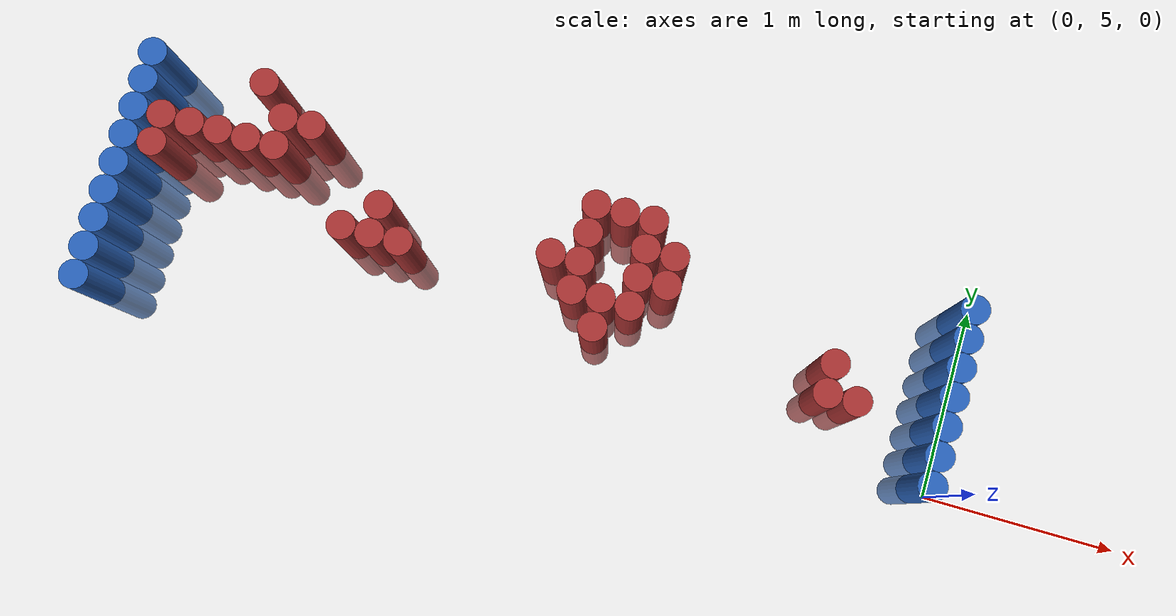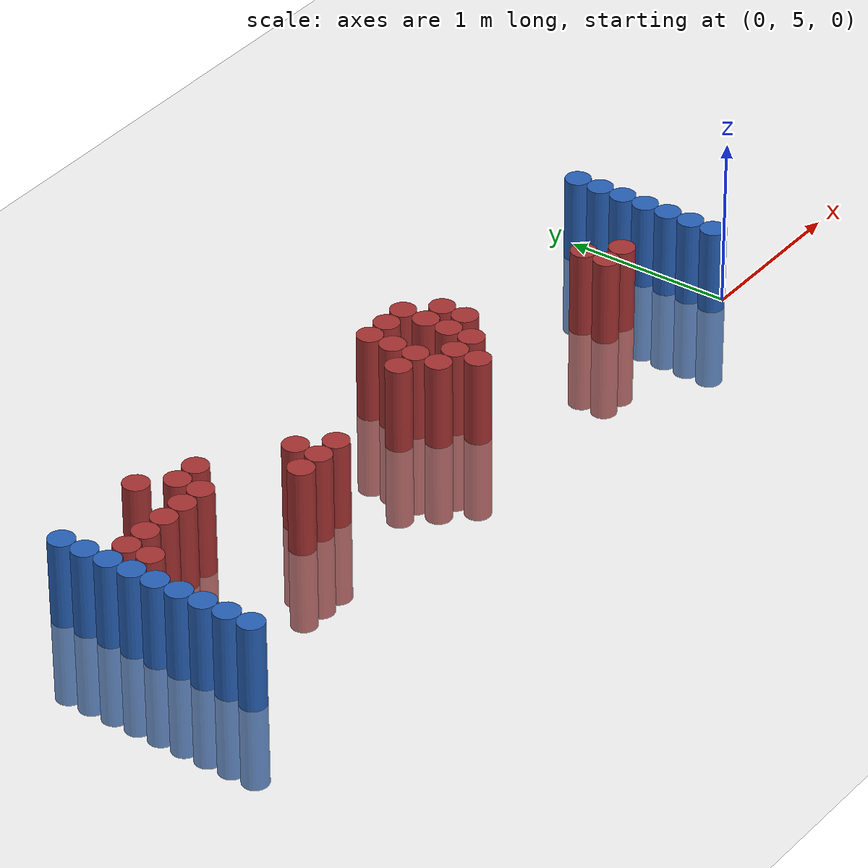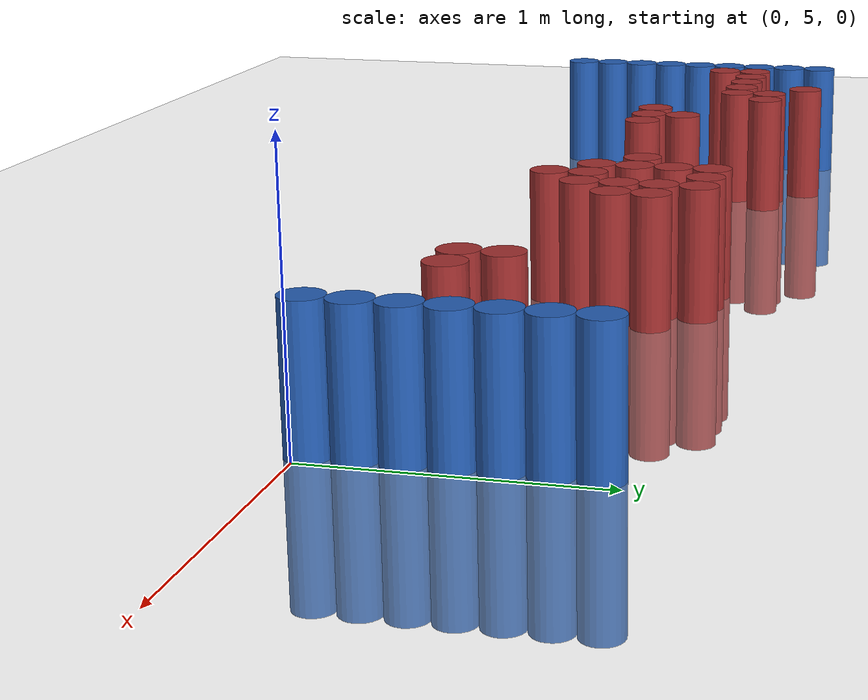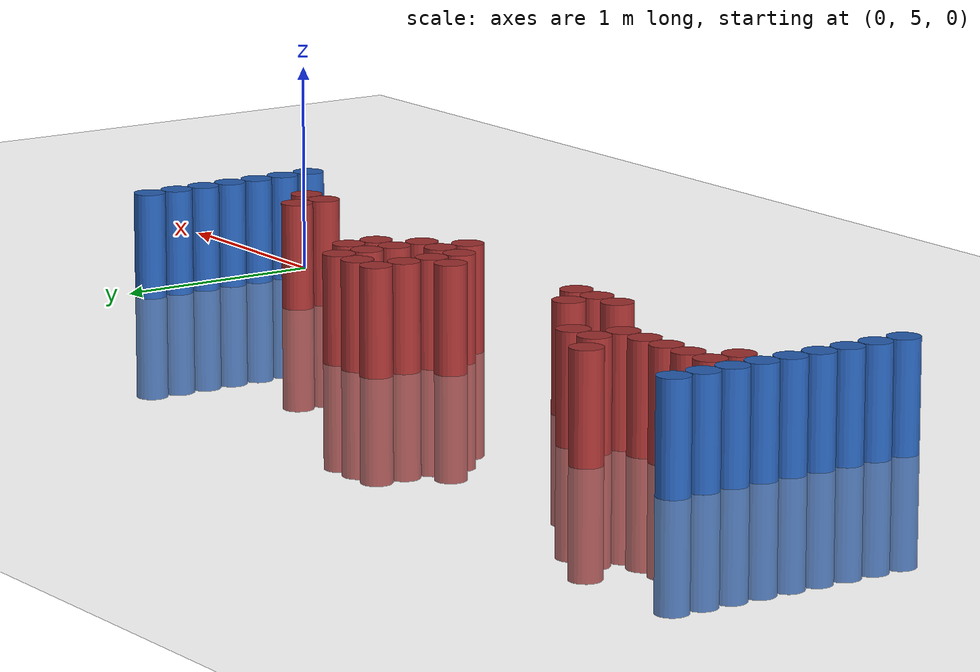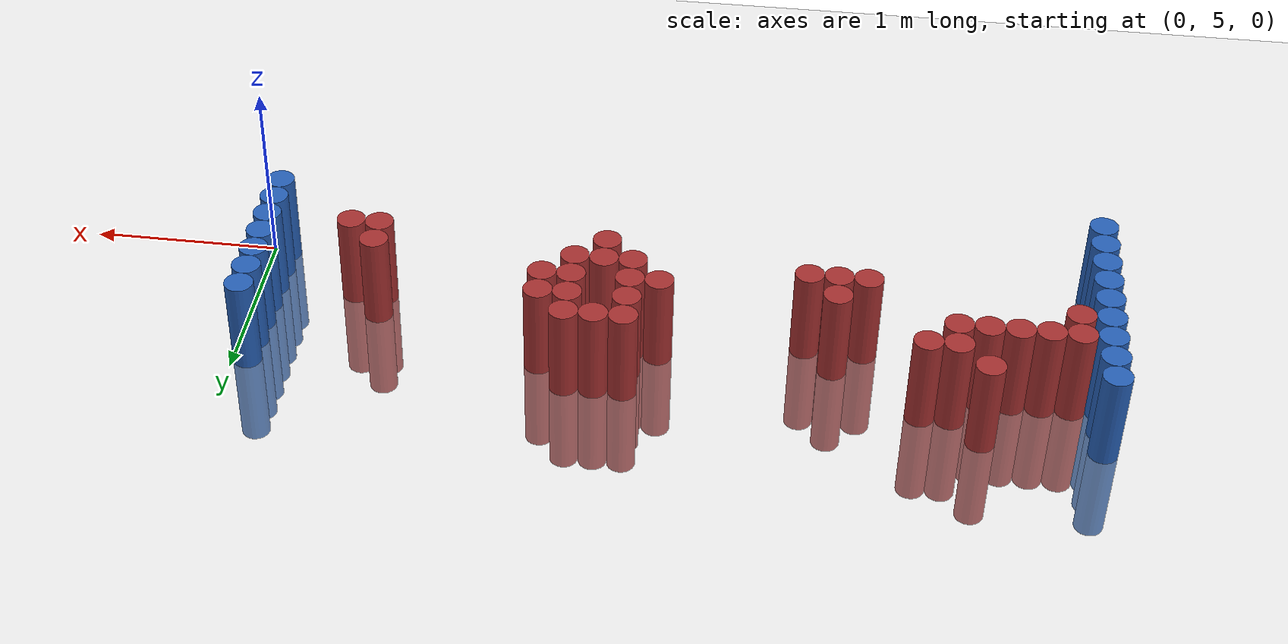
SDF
<sdf version="1.6">
 <world name="default">
  <model name="ground_plane">
   <static>1</static>
   <link name="link">
    <collision name="collision">
     <geometry><plane><normal>0 0 1</normal><size>100 100</size></plane></geometry>
     <surface><friction><ode><mu>100</mu><mu2>50</mu2></ode></friction></surface>
    </collision>
    <visual name="visual">
     <cast_shadows>0</cast_shadows>
     <geometry><plane><normal>0 0 1</normal><size>100 100</size></plane></geometry>
     <material>
      <script><uri>file://media/materials/scripts/gazebo.material</uri><name>Gazebo/Grey</name></script>
     </material>
    </visual>
   </link>
  </model>
  <model name="unit_cylinder_93">
   <static>1</static>
   <pose>-4.425000 4.875000 0.000000 0.000000 0.000000 0.000000</pose>
   <link name="link">
    <inertial>
     <mass>1</mass>
     <inertia><ixx>0.145833</ixx><ixy>0</ixy><ixz>0</ixz><iyy>0.145833</iyy><iyz>0</iyz><izz>0.125</izz></inertia>
    </inertial>
    <collision name="collision">
     <geometry><cylinder><radius>0.075000</radius><length>1</length></cylinder></geometry>
    </collision>
    <visual name="visual">
     <geometry><cylinder><radius>0.075000</radius><length>1</length></cylinder></geometry>
     <material>
      <ambient>0.152000 0.379000 0.720000 1</ambient>
      <diffuse>0.152000 0.379000 0.720000 1</diffuse>
     </material>
     <material>
      <script><name>Gazebo/Grey</name><uri>file://media/materials/scripts/gazebo.material</uri></script>
     </material>
    </visual>
   </link>
  </model>
  <model name="unit_cylinder_94">
   <static>1</static>
   <pose>-0.075000 5.025000 0.000000 0.000000 0.000000 0.000000</pose>
   <link name="link">
    <inertial>
     <mass>1</mass>
     <inertia><ixx>0.145833</ixx><ixy>0</ixy><ixz>0</ixz><iyy>0.145833</iyy><iyz>0</iyz><izz>0.125</izz></inertia>
    </inertial>
    <collision name="collision">
     <geometry><cylinder><radius>0.075000</radius><length>1</length></cylinder></geometry>
    </collision>
    <visual name="visual">
     <geometry><cylinder><radius>0.075000</radius><length>1</length></cylinder></geometry>
     <material>
      <ambient>0.152000 0.379000 0.720000 1</ambient>
      <diffuse>0.152000 0.379000 0.720000 1</diffuse>
     </material>
     <material>
      <script><name>Gazebo/Grey</name><uri>file://media/materials/scripts/gazebo.material</uri></script>
     </material>
    </visual>
   </link>
  </model>
  <model name="unit_cylinder_95">
   <static>1</static>
   <pose>-4.425000 5.025000 0.000000 0.000000 0.000000 0.000000</pose>
   <link name="link">
    <inertial>
     <mass>1</mass>
     <inertia><ixx>0.145833</ixx><ixy>0</ixy><ixz>0</ixz><iyy>0.145833</iyy><iyz>0</iyz><izz>0.125</izz></inertia>
    </inertial>
    <collision name="collision">
     <geometry><cylinder><radius>0.075000</radius><length>1</length></cylinder></geometry>
    </collision>
    <visual name="visual">
     <geometry><cylinder><radius>0.075000</radius><length>1</length></cylinder></geometry>
     <material>
      <ambient>0.152000 0.379000 0.720000 1</ambient>
      <diffuse>0.152000 0.379000 0.720000 1</diffuse>
     </material>
     <material>
      <script><name>Gazebo/Grey</name><uri>file://media/materials/scripts/gazebo.material</uri></script>
     </material>
    </visual>
   </link>
  </model>
  <model name="unit_cylinder_96">
   <static>1</static>
   <pose>-4.425000 5.175000 0.000000 0.000000 0.000000 0.000000</pose>
   <link name="link">
    <inertial>
     <mass>1</mass>
     <inertia><ixx>0.145833</ixx><ixy>0</ixy><ixz>0</ixz><iyy>0.145833</iyy><iyz>0</iyz><izz>0.125</izz></inertia>
    </inertial>
    <collision name="collision">
     <geometry><cylinder><radius>0.075000</radius><length>1</length></cylinder></geometry>
    </collision>
    <visual name="visual">
     <geometry><cylinder><radius>0.075000</radius><length>1</length></cylinder></geometry>
     <material>
      <ambient>0.152000 0.379000 0.720000 1</ambient>
      <diffuse>0.152000 0.379000 0.720000 1</diffuse>
     </material>
     <material>
      <script><name>Gazebo/Grey</name><uri>file://media/materials/scripts/gazebo.material</uri></script>
     </material>
    </visual>
   </link>
  </model>
  <model name="unit_cylinder_97">
   <static>1</static>
   <pose>-4.425000 5.325000 0.000000 0.000000 0.000000 0.000000</pose>
   <link name="link">
    <inertial>
     <mass>1</mass>
     <inertia><ixx>0.145833</ixx><ixy>0</ixy><ixz>0</ixz><iyy>0.145833</iyy><iyz>0</iyz><izz>0.125</izz></inertia>
    </inertial>
    <collision name="collision">
     <geometry><cylinder><radius>0.075000</radius><length>1</length></cylinder></geometry>
    </collision>
    <visual name="visual">
     <geometry><cylinder><radius>0.075000</radius><length>1</length></cylinder></geometry>
     <material>
      <ambient>0.152000 0.379000 0.720000 1</ambient>
      <diffuse>0.152000 0.379000 0.720000 1</diffuse>
     </material>
     <material>
      <script><name>Gazebo/Grey</name><uri>file://media/materials/scripts/gazebo.material</uri></script>
     </material>
    </visual>
   </link>
  </model>
  <model name="unit_cylinder_98">
   <static>1</static>
   <pose>-4.425000 5.475000 0.000000 0.000000 0.000000 0.000000</pose>
   <link name="link">
    <inertial>
     <mass>1</mass>
     <inertia><ixx>0.145833</ixx><ixy>0</ixy><ixz>0</ixz><iyy>0.145833</iyy><iyz>0</iyz><izz>0.125</izz></inertia>
    </inertial>
    <collision name="collision">
     <geometry><cylinder><radius>0.075000</radius><length>1</length></cylinder></geometry>
    </collision>
    <visual name="visual">
     <geometry><cylinder><radius>0.075000</radius><length>1</length></cylinder></geometry>
     <material>
      <ambient>0.152000 0.379000 0.720000 1</ambient>
      <diffuse>0.152000 0.379000 0.720000 1</diffuse>
     </material>
     <material>
      <script><name>Gazebo/Grey</name><uri>file://media/materials/scripts/gazebo.material</uri></script>
     </material>
    </visual>
   </link>
  </model>
  <model name="unit_cylinder_99">
   <static>1</static>
   <pose>-4.425000 5.625000 0.000000 0.000000 0.000000 0.000000</pose>
   <link name="link">
    <inertial>
     <mass>1</mass>
     <inertia><ixx>0.145833</ixx><ixy>0</ixy><ixz>0</ixz><iyy>0.145833</iyy><iyz>0</iyz><izz>0.125</izz></inertia>
    </inertial>
    <collision name="collision">
     <geometry><cylinder><radius>0.075000</radius><length>1</length></cylinder></geometry>
    </collision>
    <visual name="visual">
     <geometry><cylinder><radius>0.075000</radius><length>1</length></cylinder></geometry>
     <material>
      <ambient>0.152000 0.379000 0.720000 1</ambient>
      <diffuse>0.152000 0.379000 0.720000 1</diffuse>
     </material>
     <material>
      <script><name>Gazebo/Grey</name><uri>file://media/materials/scripts/gazebo.material</uri></script>
     </material>
    </visual>
   </link>
  </model>
  <model name="unit_cylinder_100">
   <static>1</static>
   <pose>-4.425000 5.775000 0.000000 0.000000 0.000000 0.000000</pose>
   <link name="link">
    <inertial>
     <mass>1</mass>
     <inertia><ixx>0.145833</ixx><ixy>0</ixy><ixz>0</ixz><iyy>0.145833</iyy><iyz>0</iyz><izz>0.125</izz></inertia>
    </inertial>
    <collision name="collision">
     <geometry><cylinder><radius>0.075000</radius><length>1</length></cylinder></geometry>
    </collision>
    <visual name="visual">
     <geometry><cylinder><radius>0.075000</radius><length>1</length></cylinder></geometry>
     <material>
      <ambient>0.152000 0.379000 0.720000 1</ambient>
      <diffuse>0.152000 0.379000 0.720000 1</diffuse>
     </material>
     <material>
      <script><name>Gazebo/Grey</name><uri>file://media/materials/scripts/gazebo.material</uri></script>
     </material>
    </visual>
   </link>
  </model>
  <model name="unit_cylinder_101">
   <static>1</static>
   <pose>-4.425000 5.925000 0.000000 0.000000 0.000000 0.000000</pose>
   <link name="link">
    <inertial>
     <mass>1</mass>
     <inertia><ixx>0.145833</ixx><ixy>0</ixy><ixz>0</ixz><iyy>0.145833</iyy><iyz>0</iyz><izz>0.125</izz></inertia>
    </inertial>
    <collision name="collision">
     <geometry><cylinder><radius>0.075000</radius><length>1</length></cylinder></geometry>
    </collision>
    <visual name="visual">
     <geometry><cylinder><radius>0.075000</radius><length>1</length></cylinder></geometry>
     <material>
      <ambient>0.152000 0.379000 0.720000 1</ambient>
      <diffuse>0.152000 0.379000 0.720000 1</diffuse>
     </material>
     <material>
      <script><name>Gazebo/Grey</name><uri>file://media/materials/scripts/gazebo.material</uri></script>
     </material>
    </visual>
   </link>
  </model>
  <model name="unit_cylinder_102">
   <static>1</static>
   <pose>-4.425000 6.075000 0.000000 0.000000 0.000000 0.000000</pose>
   <link name="link">
    <inertial>
     <mass>1</mass>
     <inertia><ixx>0.145833</ixx><ixy>0</ixy><ixz>0</ixz><iyy>0.145833</iyy><iyz>0</iyz><izz>0.125</izz></inertia>
    </inertial>
    <collision name="collision">
     <geometry><cylinder><radius>0.075000</radius><length>1</length></cylinder></geometry>
    </collision>
    <visual name="visual">
     <geometry><cylinder><radius>0.075000</radius><length>1</length></cylinder></geometry>
     <material>
      <ambient>0.152000 0.379000 0.720000 1</ambient>
      <diffuse>0.152000 0.379000 0.720000 1</diffuse>
     </material>
     <material>
      <script><name>Gazebo/Grey</name><uri>file://media/materials/scripts/gazebo.material</uri></script>
     </material>
    </visual>
   </link>
  </model>
  <model name="unit_cylinder_126">
   <static>1</static>
   <pose>-4.275000 5.625000 0.000000 0.000000 0.000000 0.000000</pose>
   <link name="link">
    <inertial>
     <mass>1</mass>
     <inertia><ixx>0.145833</ixx><ixy>0</ixy><ixz>0</ixz><iyy>0.145833</iyy><iyz>0</iyz><izz>0.125</izz></inertia>
    </inertial>
    <collision name="collision">
     <geometry><cylinder><radius>0.075000</radius><length>1</length></cylinder></geometry>
    </collision>
    <visual name="visual">
     <geometry><cylinder><radius>0.075000</radius><length>1</length></cylinder></geometry>
     <material>
      <ambient>0.648000 0.192000 0.192000 1</ambient>
      <diffuse>0.648000 0.192000 0.192000 1</diffuse>
     </material>
     <material>
      <script><name>Gazebo/Grey</name><uri>file://media/materials/scripts/gazebo.material</uri></script>
     </material>
    </visual>
   </link>
  </model>
  <model name="unit_cylinder_127">
   <static>1</static>
   <pose>-4.275000 5.775000 0.000000 0.000000 0.000000 0.000000</pose>
   <link name="link">
    <inertial>
     <mass>1</mass>
     <inertia><ixx>0.145833</ixx><ixy>0</ixy><ixz>0</ixz><iyy>0.145833</iyy><iyz>0</iyz><izz>0.125</izz></inertia>
    </inertial>
    <collision name="collision">
     <geometry><cylinder><radius>0.075000</radius><length>1</length></cylinder></geometry>
    </collision>
    <visual name="visual">
     <geometry><cylinder><radius>0.075000</radius><length>1</length></cylinder></geometry>
     <material>
      <ambient>0.648000 0.192000 0.192000 1</ambient>
      <diffuse>0.648000 0.192000 0.192000 1</diffuse>
     </material>
     <material>
      <script><name>Gazebo/Grey</name><uri>file://media/materials/scripts/gazebo.material</uri></script>
     </material>
    </visual>
   </link>
  </model>
  <model name="unit_cylinder_143">
   <static>1</static>
   <pose>-4.125000 5.775000 0.000000 0.000000 0.000000 0.000000</pose>
   <link name="link">
    <inertial>
     <mass>1</mass>
     <inertia><ixx>0.145833</ixx><ixy>0</ixy><ixz>0</ixz><iyy>0.145833</iyy><iyz>0</iyz><izz>0.125</izz></inertia>
    </inertial>
    <collision name="collision">
     <geometry><cylinder><radius>0.075000</radius><length>1</length></cylinder></geometry>
    </collision>
    <visual name="visual">
     <geometry><cylinder><radius>0.075000</radius><length>1</length></cylinder></geometry>
     <material>
      <ambient>0.648000 0.192000 0.192000 1</ambient>
      <diffuse>0.648000 0.192000 0.192000 1</diffuse>
     </material>
     <material>
      <script><name>Gazebo/Grey</name><uri>file://media/materials/scripts/gazebo.material</uri></script>
     </material>
    </visual>
   </link>
  </model>
  <model name="unit_cylinder_146">
   <static>1</static>
   <pose>-3.975000 5.775000 0.000000 0.000000 0.000000 0.000000</pose>
   <link name="link">
    <inertial>
     <mass>1</mass>
     <inertia><ixx>0.145833</ixx><ixy>0</ixy><ixz>0</ixz><iyy>0.145833</iyy><iyz>0</iyz><izz>0.125</izz></inertia>
    </inertial>
    <collision name="collision">
     <geometry><cylinder><radius>0.075000</radius><length>1</length></cylinder></geometry>
    </collision>
    <visual name="visual">
     <geometry><cylinder><radius>0.075000</radius><length>1</length></cylinder></geometry>
     <material>
      <ambient>0.648000 0.192000 0.192000 1</ambient>
      <diffuse>0.648000 0.192000 0.192000 1</diffuse>
     </material>
     <material>
      <script><name>Gazebo/Grey</name><uri>file://media/materials/scripts/gazebo.material</uri></script>
     </material>
    </visual>
   </link>
  </model>
  <model name="unit_cylinder_148">
   <static>1</static>
   <pose>-3.825000 5.775000 0.000000 0.000000 0.000000 0.000000</pose>
   <link name="link">
    <inertial>
     <mass>1</mass>
     <inertia><ixx>0.145833</ixx><ixy>0</ixy><ixz>0</ixz><iyy>0.145833</iyy><iyz>0</iyz><izz>0.125</izz></inertia>
    </inertial>
    <collision name="collision">
     <geometry><cylinder><radius>0.075000</radius><length>1</length></cylinder></geometry>
    </collision>
    <visual name="visual">
     <geometry><cylinder><radius>0.075000</radius><length>1</length></cylinder></geometry>
     <material>
      <ambient>0.648000 0.192000 0.192000 1</ambient>
      <diffuse>0.648000 0.192000 0.192000 1</diffuse>
     </material>
     <material>
      <script><name>Gazebo/Grey</name><uri>file://media/materials/scripts/gazebo.material</uri></script>
     </material>
    </visual>
   </link>
  </model>
  <model name="unit_cylinder_149">
   <static>1</static>
   <pose>-3.825000 6.075000 0.000000 0.000000 0.000000 0.000000</pose>
   <link name="link">
    <inertial>
     <mass>1</mass>
     <inertia><ixx>0.145833</ixx><ixy>0</ixy><ixz>0</ixz><iyy>0.145833</iyy><iyz>0</iyz><izz>0.125</izz></inertia>
    </inertial>
    <collision name="collision">
     <geometry><cylinder><radius>0.075000</radius><length>1</length></cylinder></geometry>
    </collision>
    <visual name="visual">
     <geometry><cylinder><radius>0.075000</radius><length>1</length></cylinder></geometry>
     <material>
      <ambient>0.648000 0.192000 0.192000 1</ambient>
      <diffuse>0.648000 0.192000 0.192000 1</diffuse>
     </material>
     <material>
      <script><name>Gazebo/Grey</name><uri>file://media/materials/scripts/gazebo.material</uri></script>
     </material>
    </visual>
   </link>
  </model>
  <model name="unit_cylinder_151">
   <static>1</static>
   <pose>-3.675000 5.775000 0.000000 0.000000 0.000000 0.000000</pose>
   <link name="link">
    <inertial>
     <mass>1</mass>
     <inertia><ixx>0.145833</ixx><ixy>0</ixy><ixz>0</ixz><iyy>0.145833</iyy><iyz>0</iyz><izz>0.125</izz></inertia>
    </inertial>
    <collision name="collision">
     <geometry><cylinder><radius>0.075000</radius><length>1</length></cylinder></geometry>
    </collision>
    <visual name="visual">
     <geometry><cylinder><radius>0.075000</radius><length>1</length></cylinder></geometry>
     <material>
      <ambient>0.648000 0.192000 0.192000 1</ambient>
      <diffuse>0.648000 0.192000 0.192000 1</diffuse>
     </material>
     <material>
      <script><name>Gazebo/Grey</name><uri>file://media/materials/scripts/gazebo.material</uri></script>
     </material>
    </visual>
   </link>
  </model>
  <model name="unit_cylinder_152">
   <static>1</static>
   <pose>-3.675000 5.925000 0.000000 0.000000 0.000000 0.000000</pose>
   <link name="link">
    <inertial>
     <mass>1</mass>
     <inertia><ixx>0.145833</ixx><ixy>0</ixy><ixz>0</ixz><iyy>0.145833</iyy><iyz>0</iyz><izz>0.125</izz></inertia>
    </inertial>
    <collision name="collision">
     <geometry><cylinder><radius>0.075000</radius><length>1</length></cylinder></geometry>
    </collision>
    <visual name="visual">
     <geometry><cylinder><radius>0.075000</radius><length>1</length></cylinder></geometry>
     <material>
      <ambient>0.648000 0.192000 0.192000 1</ambient>
      <diffuse>0.648000 0.192000 0.192000 1</diffuse>
     </material>
     <material>
      <script><name>Gazebo/Grey</name><uri>file://media/materials/scripts/gazebo.material</uri></script>
     </material>
    </visual>
   </link>
  </model>
  <model name="unit_cylinder_155">
   <static>1</static>
   <pose>-3.525000 5.925000 0.000000 0.000000 0.000000 0.000000</pose>
   <link name="link">
    <inertial>
     <mass>1</mass>
     <inertia><ixx>0.145833</ixx><ixy>0</ixy><ixz>0</ixz><iyy>0.145833</iyy><iyz>0</iyz><izz>0.125</izz></inertia>
    </inertial>
    <collision name="collision">
     <geometry><cylinder><radius>0.075000</radius><length>1</length></cylinder></geometry>
    </collision>
    <visual name="visual">
     <geometry><cylinder><radius>0.075000</radius><length>1</length></cylinder></geometry>
     <material>
      <ambient>0.648000 0.192000 0.192000 1</ambient>
      <diffuse>0.648000 0.192000 0.192000 1</diffuse>
     </material>
     <material>
      <script><name>Gazebo/Grey</name><uri>file://media/materials/scripts/gazebo.material</uri></script>
     </material>
    </visual>
   </link>
  </model>
  <model name="unit_cylinder_164">
   <static>1</static>
   <pose>-3.225000 5.475000 0.000000 0.000000 0.000000 0.000000</pose>
   <link name="link">
    <inertial>
     <mass>1</mass>
     <inertia><ixx>0.145833</ixx><ixy>0</ixy><ixz>0</ixz><iyy>0.145833</iyy><iyz>0</iyz><izz>0.125</izz></inertia>
    </inertial>
    <collision name="collision">
     <geometry><cylinder><radius>0.075000</radius><length>1</length></cylinder></geometry>
    </collision>
    <visual name="visual">
     <geometry><cylinder><radius>0.075000</radius><length>1</length></cylinder></geometry>
     <material>
      <ambient>0.648000 0.192000 0.192000 1</ambient>
      <diffuse>0.648000 0.192000 0.192000 1</diffuse>
     </material>
     <material>
      <script><name>Gazebo/Grey</name><uri>file://media/materials/scripts/gazebo.material</uri></script>
     </material>
    </visual>
   </link>
  </model>
  <model name="unit_cylinder_168">
   <static>1</static>
   <pose>-3.075000 5.475000 0.000000 0.000000 0.000000 0.000000</pose>
   <link name="link">
    <inertial>
     <mass>1</mass>
     <inertia><ixx>0.145833</ixx><ixy>0</ixy><ixz>0</ixz><iyy>0.145833</iyy><iyz>0</iyz><izz>0.125</izz></inertia>
    </inertial>
    <collision name="collision">
     <geometry><cylinder><radius>0.075000</radius><length>1</length></cylinder></geometry>
    </collision>
    <visual name="visual">
     <geometry><cylinder><radius>0.075000</radius><length>1</length></cylinder></geometry>
     <material>
      <ambient>0.648000 0.192000 0.192000 1</ambient>
      <diffuse>0.648000 0.192000 0.192000 1</diffuse>
     </material>
     <material>
      <script><name>Gazebo/Grey</name><uri>file://media/materials/scripts/gazebo.material</uri></script>
     </material>
    </visual>
   </link>
  </model>
  <model name="unit_cylinder_169">
   <static>1</static>
   <pose>-3.075000 5.625000 0.000000 0.000000 0.000000 0.000000</pose>
   <link name="link">
    <inertial>
     <mass>1</mass>
     <inertia><ixx>0.145833</ixx><ixy>0</ixy><ixz>0</ixz><iyy>0.145833</iyy><iyz>0</iyz><izz>0.125</izz></inertia>
    </inertial>
    <collision name="collision">
     <geometry><cylinder><radius>0.075000</radius><length>1</length></cylinder></geometry>
    </collision>
    <visual name="visual">
     <geometry><cylinder><radius>0.075000</radius><length>1</length></cylinder></geometry>
     <material>
      <ambient>0.648000 0.192000 0.192000 1</ambient>
      <diffuse>0.648000 0.192000 0.192000 1</diffuse>
     </material>
     <material>
      <script><name>Gazebo/Grey</name><uri>file://media/materials/scripts/gazebo.material</uri></script>
     </material>
    </visual>
   </link>
  </model>
  <model name="unit_cylinder_170">
   <static>1</static>
   <pose>-2.925000 5.475000 0.000000 0.000000 0.000000 0.000000</pose>
   <link name="link">
    <inertial>
     <mass>1</mass>
     <inertia><ixx>0.145833</ixx><ixy>0</ixy><ixz>0</ixz><iyy>0.145833</iyy><iyz>0</iyz><izz>0.125</izz></inertia>
    </inertial>
    <collision name="collision">
     <geometry><cylinder><radius>0.075000</radius><length>1</length></cylinder></geometry>
    </collision>
    <visual name="visual">
     <geometry><cylinder><radius>0.075000</radius><length>1</length></cylinder></geometry>
     <material>
      <ambient>0.648000 0.192000 0.192000 1</ambient>
      <diffuse>0.648000 0.192000 0.192000 1</diffuse>
     </material>
     <material>
      <script><name>Gazebo/Grey</name><uri>file://media/materials/scripts/gazebo.material</uri></script>
     </material>
    </visual>
   </link>
  </model>
  <model name="unit_cylinder_186">
   <static>1</static>
   <pose>-2.175000 5.625000 0.000000 0.000000 0.000000 0.000000</pose>
   <link name="link">
    <inertial>
     <mass>1</mass>
     <inertia><ixx>0.145833</ixx><ixy>0</ixy><ixz>0</ixz><iyy>0.145833</iyy><iyz>0</iyz><izz>0.125</izz></inertia>
    </inertial>
    <collision name="collision">
     <geometry><cylinder><radius>0.075000</radius><length>1</length></cylinder></geometry>
    </collision>
    <visual name="visual">
     <geometry><cylinder><radius>0.075000</radius><length>1</length></cylinder></geometry>
     <material>
      <ambient>0.648000 0.192000 0.192000 1</ambient>
      <diffuse>0.648000 0.192000 0.192000 1</diffuse>
     </material>
     <material>
      <script><name>Gazebo/Grey</name><uri>file://media/materials/scripts/gazebo.material</uri></script>
     </material>
    </visual>
   </link>
  </model>
  <model name="unit_cylinder_190">
   <static>1</static>
   <pose>-2.025000 5.475000 0.000000 0.000000 0.000000 0.000000</pose>
   <link name="link">
    <inertial>
     <mass>1</mass>
     <inertia><ixx>0.145833</ixx><ixy>0</ixy><ixz>0</ixz><iyy>0.145833</iyy><iyz>0</iyz><izz>0.125</izz></inertia>
    </inertial>
    <collision name="collision">
     <geometry><cylinder><radius>0.075000</radius><length>1</length></cylinder></geometry>
    </collision>
    <visual name="visual">
     <geometry><cylinder><radius>0.075000</radius><length>1</length></cylinder></geometry>
     <material>
      <ambient>0.648000 0.192000 0.192000 1</ambient>
      <diffuse>0.648000 0.192000 0.192000 1</diffuse>
     </material>
     <material>
      <script><name>Gazebo/Grey</name><uri>file://media/materials/scripts/gazebo.material</uri></script>
     </material>
    </visual>
   </link>
  </model>
  <model name="unit_cylinder_191">
   <static>1</static>
   <pose>-2.025000 5.625000 0.000000 0.000000 0.000000 0.000000</pose>
   <link name="link">
    <inertial>
     <mass>1</mass>
     <inertia><ixx>0.145833</ixx><ixy>0</ixy><ixz>0</ixz><iyy>0.145833</iyy><iyz>0</iyz><izz>0.125</izz></inertia>
    </inertial>
    <collision name="collision">
     <geometry><cylinder><radius>0.075000</radius><length>1</length></cylinder></geometry>
    </collision>
    <visual name="visual">
     <geometry><cylinder><radius>0.075000</radius><length>1</length></cylinder></geometry>
     <material>
      <ambient>0.648000 0.192000 0.192000 1</ambient>
      <diffuse>0.648000 0.192000 0.192000 1</diffuse>
     </material>
     <material>
      <script><name>Gazebo/Grey</name><uri>file://media/materials/scripts/gazebo.material</uri></script>
     </material>
    </visual>
   </link>
  </model>
  <model name="unit_cylinder_192">
   <static>1</static>
   <pose>-2.025000 5.775000 0.000000 0.000000 0.000000 0.000000</pose>
   <link name="link">
    <inertial>
     <mass>1</mass>
     <inertia><ixx>0.145833</ixx><ixy>0</ixy><ixz>0</ixz><iyy>0.145833</iyy><iyz>0</iyz><izz>0.125</izz></inertia>
    </inertial>
    <collision name="collision">
     <geometry><cylinder><radius>0.075000</radius><length>1</length></cylinder></geometry>
    </collision>
    <visual name="visual">
     <geometry><cylinder><radius>0.075000</radius><length>1</length></cylinder></geometry>
     <material>
      <ambient>0.648000 0.192000 0.192000 1</ambient>
      <diffuse>0.648000 0.192000 0.192000 1</diffuse>
     </material>
     <material>
      <script><name>Gazebo/Grey</name><uri>file://media/materials/scripts/gazebo.material</uri></script>
     </material>
    </visual>
   </link>
  </model>
  <model name="unit_cylinder_193">
   <static>1</static>
   <pose>-2.025000 5.925000 0.000000 0.000000 0.000000 0.000000</pose>
   <link name="link">
    <inertial>
     <mass>1</mass>
     <inertia><ixx>0.145833</ixx><ixy>0</ixy><ixz>0</ixz><iyy>0.145833</iyy><iyz>0</iyz><izz>0.125</izz></inertia>
    </inertial>
    <collision name="collision">
     <geometry><cylinder><radius>0.075000</radius><length>1</length></cylinder></geometry>
    </collision>
    <visual name="visual">
     <geometry><cylinder><radius>0.075000</radius><length>1</length></cylinder></geometry>
     <material>
      <ambient>0.648000 0.192000 0.192000 1</ambient>
      <diffuse>0.648000 0.192000 0.192000 1</diffuse>
     </material>
     <material>
      <script><name>Gazebo/Grey</name><uri>file://media/materials/scripts/gazebo.material</uri></script>
     </material>
    </visual>
   </link>
  </model>
  <model name="unit_cylinder_195">
   <static>1</static>
   <pose>-1.875000 5.325000 0.000000 0.000000 0.000000 0.000000</pose>
   <link name="link">
    <inertial>
     <mass>1</mass>
     <inertia><ixx>0.145833</ixx><ixy>0</ixy><ixz>0</ixz><iyy>0.145833</iyy><iyz>0</iyz><izz>0.125</izz></inertia>
    </inertial>
    <collision name="collision">
     <geometry><cylinder><radius>0.075000</radius><length>1</length></cylinder></geometry>
    </collision>
    <visual name="visual">
     <geometry><cylinder><radius>0.075000</radius><length>1</length></cylinder></geometry>
     <material>
      <ambient>0.648000 0.192000 0.192000 1</ambient>
      <diffuse>0.648000 0.192000 0.192000 1</diffuse>
     </material>
     <material>
      <script><name>Gazebo/Grey</name><uri>file://media/materials/scripts/gazebo.material</uri></script>
     </material>
    </visual>
   </link>
  </model>
  <model name="unit_cylinder_196">
   <static>1</static>
   <pose>-1.875000 5.475000 0.000000 0.000000 0.000000 0.000000</pose>
   <link name="link">
    <inertial>
     <mass>1</mass>
     <inertia><ixx>0.145833</ixx><ixy>0</ixy><ixz>0</ixz><iyy>0.145833</iyy><iyz>0</iyz><izz>0.125</izz></inertia>
    </inertial>
    <collision name="collision">
     <geometry><cylinder><radius>0.075000</radius><length>1</length></cylinder></geometry>
    </collision>
    <visual name="visual">
     <geometry><cylinder><radius>0.075000</radius><length>1</length></cylinder></geometry>
     <material>
      <ambient>0.648000 0.192000 0.192000 1</ambient>
      <diffuse>0.648000 0.192000 0.192000 1</diffuse>
     </material>
     <material>
      <script><name>Gazebo/Grey</name><uri>file://media/materials/scripts/gazebo.material</uri></script>
     </material>
    </visual>
   </link>
  </model>
  <model name="unit_cylinder_197">
   <static>1</static>
   <pose>-1.875000 5.925000 0.000000 0.000000 0.000000 0.000000</pose>
   <link name="link">
    <inertial>
     <mass>1</mass>
     <inertia><ixx>0.145833</ixx><ixy>0</ixy><ixz>0</ixz><iyy>0.145833</iyy><iyz>0</iyz><izz>0.125</izz></inertia>
    </inertial>
    <collision name="collision">
     <geometry><cylinder><radius>0.075000</radius><length>1</length></cylinder></geometry>
    </collision>
    <visual name="visual">
     <geometry><cylinder><radius>0.075000</radius><length>1</length></cylinder></geometry>
     <material>
      <ambient>0.648000 0.192000 0.192000 1</ambient>
      <diffuse>0.648000 0.192000 0.192000 1</diffuse>
     </material>
     <material>
      <script><name>Gazebo/Grey</name><uri>file://media/materials/scripts/gazebo.material</uri></script>
     </material>
    </visual>
   </link>
  </model>
  <model name="unit_cylinder_199">
   <static>1</static>
   <pose>-1.725000 5.475000 0.000000 0.000000 0.000000 0.000000</pose>
   <link name="link">
    <inertial>
     <mass>1</mass>
     <inertia><ixx>0.145833</ixx><ixy>0</ixy><ixz>0</ixz><iyy>0.145833</iyy><iyz>0</iyz><izz>0.125</izz></inertia>
    </inertial>
    <collision name="collision">
     <geometry><cylinder><radius>0.075000</radius><length>1</length></cylinder></geometry>
    </collision>
    <visual name="visual">
     <geometry><cylinder><radius>0.075000</radius><length>1</length></cylinder></geometry>
     <material>
      <ambient>0.648000 0.192000 0.192000 1</ambient>
      <diffuse>0.648000 0.192000 0.192000 1</diffuse>
     </material>
     <material>
      <script><name>Gazebo/Grey</name><uri>file://media/materials/scripts/gazebo.material</uri></script>
     </material>
    </visual>
   </link>
  </model>
  <model name="unit_cylinder_200">
   <static>1</static>
   <pose>-1.725000 5.625000 0.000000 0.000000 0.000000 0.000000</pose>
   <link name="link">
    <inertial>
     <mass>1</mass>
     <inertia><ixx>0.145833</ixx><ixy>0</ixy><ixz>0</ixz><iyy>0.145833</iyy><iyz>0</iyz><izz>0.125</izz></inertia>
    </inertial>
    <collision name="collision">
     <geometry><cylinder><radius>0.075000</radius><length>1</length></cylinder></geometry>
    </collision>
    <visual name="visual">
     <geometry><cylinder><radius>0.075000</radius><length>1</length></cylinder></geometry>
     <material>
      <ambient>0.648000 0.192000 0.192000 1</ambient>
      <diffuse>0.648000 0.192000 0.192000 1</diffuse>
     </material>
     <material>
      <script><name>Gazebo/Grey</name><uri>file://media/materials/scripts/gazebo.material</uri></script>
     </material>
    </visual>
   </link>
  </model>
  <model name="unit_cylinder_201">
   <static>1</static>
   <pose>-1.725000 5.775000 0.000000 0.000000 0.000000 0.000000</pose>
   <link name="link">
    <inertial>
     <mass>1</mass>
     <inertia><ixx>0.145833</ixx><ixy>0</ixy><ixz>0</ixz><iyy>0.145833</iyy><iyz>0</iyz><izz>0.125</izz></inertia>
    </inertial>
    <collision name="collision">
     <geometry><cylinder><radius>0.075000</radius><length>1</length></cylinder></geometry>
    </collision>
    <visual name="visual">
     <geometry><cylinder><radius>0.075000</radius><length>1</length></cylinder></geometry>
     <material>
      <ambient>0.648000 0.192000 0.192000 1</ambient>
      <diffuse>0.648000 0.192000 0.192000 1</diffuse>
     </material>
     <material>
      <script><name>Gazebo/Grey</name><uri>file://media/materials/scripts/gazebo.material</uri></script>
     </material>
    </visual>
   </link>
  </model>
  <model name="unit_cylinder_202">
   <static>1</static>
   <pose>-1.725000 5.925000 0.000000 0.000000 0.000000 0.000000</pose>
   <link name="link">
    <inertial>
     <mass>1</mass>
     <inertia><ixx>0.145833</ixx><ixy>0</ixy><ixz>0</ixz><iyy>0.145833</iyy><iyz>0</iyz><izz>0.125</izz></inertia>
    </inertial>
    <collision name="collision">
     <geometry><cylinder><radius>0.075000</radius><length>1</length></cylinder></geometry>
    </collision>
    <visual name="visual">
     <geometry><cylinder><radius>0.075000</radius><length>1</length></cylinder></geometry>
     <material>
      <ambient>0.648000 0.192000 0.192000 1</ambient>
      <diffuse>0.648000 0.192000 0.192000 1</diffuse>
     </material>
     <material>
      <script><name>Gazebo/Grey</name><uri>file://media/materials/scripts/gazebo.material</uri></script>
     </material>
    </visual>
   </link>
  </model>
  <model name="unit_cylinder_204">
   <static>1</static>
   <pose>-1.575000 5.625000 0.000000 0.000000 0.000000 0.000000</pose>
   <link name="link">
    <inertial>
     <mass>1</mass>
     <inertia><ixx>0.145833</ixx><ixy>0</ixy><ixz>0</ixz><iyy>0.145833</iyy><iyz>0</iyz><izz>0.125</izz></inertia>
    </inertial>
    <collision name="collision">
     <geometry><cylinder><radius>0.075000</radius><length>1</length></cylinder></geometry>
    </collision>
    <visual name="visual">
     <geometry><cylinder><radius>0.075000</radius><length>1</length></cylinder></geometry>
     <material>
      <ambient>0.648000 0.192000 0.192000 1</ambient>
      <diffuse>0.648000 0.192000 0.192000 1</diffuse>
     </material>
     <material>
      <script><name>Gazebo/Grey</name><uri>file://media/materials/scripts/gazebo.material</uri></script>
     </material>
    </visual>
   </link>
  </model>
  <model name="unit_cylinder_205">
   <static>1</static>
   <pose>-1.575000 5.775000 0.000000 0.000000 0.000000 0.000000</pose>
   <link name="link">
    <inertial>
     <mass>1</mass>
     <inertia><ixx>0.145833</ixx><ixy>0</ixy><ixz>0</ixz><iyy>0.145833</iyy><iyz>0</iyz><izz>0.125</izz></inertia>
    </inertial>
    <collision name="collision">
     <geometry><cylinder><radius>0.075000</radius><length>1</length></cylinder></geometry>
    </collision>
    <visual name="visual">
     <geometry><cylinder><radius>0.075000</radius><length>1</length></cylinder></geometry>
     <material>
      <ambient>0.648000 0.192000 0.192000 1</ambient>
      <diffuse>0.648000 0.192000 0.192000 1</diffuse>
     </material>
     <material>
      <script><name>Gazebo/Grey</name><uri>file://media/materials/scripts/gazebo.material</uri></script>
     </material>
    </visual>
   </link>
  </model>
  <model name="unit_cylinder_213">
   <static>1</static>
   <pose>-0.675000 5.325000 0.000000 0.000000 0.000000 0.000000</pose>
   <link name="link">
    <inertial>
     <mass>1</mass>
     <inertia><ixx>0.145833</ixx><ixy>0</ixy><ixz>0</ixz><iyy>0.145833</iyy><iyz>0</iyz><izz>0.125</izz></inertia>
    </inertial>
    <collision name="collision">
     <geometry><cylinder><radius>0.075000</radius><length>1</length></cylinder></geometry>
    </collision>
    <visual name="visual">
     <geometry><cylinder><radius>0.075000</radius><length>1</length></cylinder></geometry>
     <material>
      <ambient>0.648000 0.192000 0.192000 1</ambient>
      <diffuse>0.648000 0.192000 0.192000 1</diffuse>
     </material>
     <material>
      <script><name>Gazebo/Grey</name><uri>file://media/materials/scripts/gazebo.material</uri></script>
     </material>
    </visual>
   </link>
  </model>
  <model name="unit_cylinder_214">
   <static>1</static>
   <pose>-0.675000 5.475000 0.000000 0.000000 0.000000 0.000000</pose>
   <link name="link">
    <inertial>
     <mass>1</mass>
     <inertia><ixx>0.145833</ixx><ixy>0</ixy><ixz>0</ixz><iyy>0.145833</iyy><iyz>0</iyz><izz>0.125</izz></inertia>
    </inertial>
    <collision name="collision">
     <geometry><cylinder><radius>0.075000</radius><length>1</length></cylinder></geometry>
    </collision>
    <visual name="visual">
     <geometry><cylinder><radius>0.075000</radius><length>1</length></cylinder></geometry>
     <material>
      <ambient>0.648000 0.192000 0.192000 1</ambient>
      <diffuse>0.648000 0.192000 0.192000 1</diffuse>
     </material>
     <material>
      <script><name>Gazebo/Grey</name><uri>file://media/materials/scripts/gazebo.material</uri></script>
     </material>
    </visual>
   </link>
  </model>
  <model name="unit_cylinder_217">
   <static>1</static>
   <pose>-0.525000 5.325000 0.000000 0.000000 0.000000 0.000000</pose>
   <link name="link">
    <inertial>
     <mass>1</mass>
     <inertia><ixx>0.145833</ixx><ixy>0</ixy><ixz>0</ixz><iyy>0.145833</iyy><iyz>0</iyz><izz>0.125</izz></inertia>
    </inertial>
    <collision name="collision">
     <geometry><cylinder><radius>0.075000</radius><length>1</length></cylinder></geometry>
    </collision>
    <visual name="visual">
     <geometry><cylinder><radius>0.075000</radius><length>1</length></cylinder></geometry>
     <material>
      <ambient>0.648000 0.192000 0.192000 1</ambient>
      <diffuse>0.648000 0.192000 0.192000 1</diffuse>
     </material>
     <material>
      <script><name>Gazebo/Grey</name><uri>file://media/materials/scripts/gazebo.material</uri></script>
     </material>
    </visual>
   </link>
  </model>
  <model name="unit_cylinder_247">
   <static>1</static>
   <pose>-0.075000 5.175000 0.000000 0.000000 0.000000 0.000000</pose>
   <link name="link">
    <inertial>
     <mass>1</mass>
     <inertia><ixx>0.145833</ixx><ixy>0</ixy><ixz>0</ixz><iyy>0.145833</iyy><iyz>0</iyz><izz>0.125</izz></inertia>
    </inertial>
    <collision name="collision">
     <geometry><cylinder><radius>0.075000</radius><length>1</length></cylinder></geometry>
    </collision>
    <visual name="visual">
     <geometry><cylinder><radius>0.075000</radius><length>1</length></cylinder></geometry>
     <material>
      <ambient>0.152000 0.379000 0.720000 1</ambient>
      <diffuse>0.152000 0.379000 0.720000 1</diffuse>
     </material>
     <material>
      <script><name>Gazebo/Grey</name><uri>file://media/materials/scripts/gazebo.material</uri></script>
     </material>
    </visual>
   </link>
  </model>
  <model name="unit_cylinder_248">
   <static>1</static>
   <pose>-0.075000 5.325000 0.000000 0.000000 0.000000 0.000000</pose>
   <link name="link">
    <inertial>
     <mass>1</mass>
     <inertia><ixx>0.145833</ixx><ixy>0</ixy><ixz>0</ixz><iyy>0.145833</iyy><iyz>0</iyz><izz>0.125</izz></inertia>
    </inertial>
    <collision name="collision">
     <geometry><cylinder><radius>0.075000</radius><length>1</length></cylinder></geometry>
    </collision>
    <visual name="visual">
     <geometry><cylinder><radius>0.075000</radius><length>1</length></cylinder></geometry>
     <material>
      <ambient>0.152000 0.379000 0.720000 1</ambient>
      <diffuse>0.152000 0.379000 0.720000 1</diffuse>
     </material>
     <material>
      <script><name>Gazebo/Grey</name><uri>file://media/materials/scripts/gazebo.material</uri></script>
     </material>
    </visual>
   </link>
  </model>
  <model name="unit_cylinder_249">
   <static>1</static>
   <pose>-0.075000 5.475000 0.000000 0.000000 0.000000 0.000000</pose>
   <link name="link">
    <inertial>
     <mass>1</mass>
     <inertia><ixx>0.145833</ixx><ixy>0</ixy><ixz>0</ixz><iyy>0.145833</iyy><iyz>0</iyz><izz>0.125</izz></inertia>
    </inertial>
    <collision name="collision">
     <geometry><cylinder><radius>0.075000</radius><length>1</length></cylinder></geometry>
    </collision>
    <visual name="visual">
     <geometry><cylinder><radius>0.075000</radius><length>1</length></cylinder></geometry>
     <material>
      <ambient>0.152000 0.379000 0.720000 1</ambient>
      <diffuse>0.152000 0.379000 0.720000 1</diffuse>
     </material>
     <material>
      <script><name>Gazebo/Grey</name><uri>file://media/materials/scripts/gazebo.material</uri></script>
     </material>
    </visual>
   </link>
  </model>
  <model name="unit_cylinder_250">
   <static>1</static>
   <pose>-0.075000 5.625000 0.000000 0.000000 0.000000 0.000000</pose>
   <link name="link">
    <inertial>
     <mass>1</mass>
     <inertia><ixx>0.145833</ixx><ixy>0</ixy><ixz>0</ixz><iyy>0.145833</iyy><iyz>0</iyz><izz>0.125</izz></inertia>
    </inertial>
    <collision name="collision">
     <geometry><cylinder><radius>0.075000</radius><length>1</length></cylinder></geometry>
    </collision>
    <visual name="visual">
     <geometry><cylinder><radius>0.075000</radius><length>1</length></cylinder></geometry>
     <material>
      <ambient>0.152000 0.379000 0.720000 1</ambient>
      <diffuse>0.152000 0.379000 0.720000 1</diffuse>
     </material>
     <material>
      <script><name>Gazebo/Grey</name><uri>file://media/materials/scripts/gazebo.material</uri></script>
     </material>
    </visual>
   </link>
  </model>
  <model name="unit_cylinder_251">
   <static>1</static>
   <pose>-0.075000 5.775000 0.000000 0.000000 0.000000 0.000000</pose>
   <link name="link">
    <inertial>
     <mass>1</mass>
     <inertia><ixx>0.145833</ixx><ixy>0</ixy><ixz>0</ixz><iyy>0.145833</iyy><iyz>0</iyz><izz>0.125</izz></inertia>
    </inertial>
    <collision name="collision">
     <geometry><cylinder><radius>0.075000</radius><length>1</length></cylinder></geometry>
    </collision>
    <visual name="visual">
     <geometry><cylinder><radius>0.075000</radius><length>1</length></cylinder></geometry>
     <material>
      <ambient>0.152000 0.379000 0.720000 1</ambient>
      <diffuse>0.152000 0.379000 0.720000 1</diffuse>
     </material>
     <material>
      <script><name>Gazebo/Grey</name><uri>file://media/materials/scripts/gazebo.material</uri></script>
     </material>
    </visual>
   </link>
  </model>
  <model name="unit_cylinder_252">
   <static>1</static>
   <pose>-0.075000 5.925000 0.000000 0.000000 0.000000 0.000000</pose>
   <link name="link">
    <inertial>
     <mass>1</mass>
     <inertia><ixx>0.145833</ixx><ixy>0</ixy><ixz>0</ixz><iyy>0.145833</iyy><iyz>0</iyz><izz>0.125</izz></inertia>
    </inertial>
    <collision name="collision">
     <geometry><cylinder><radius>0.075000</radius><length>1</length></cylinder></geometry>
    </collision>
    <visual name="visual">
     <geometry><cylinder><radius>0.075000</radius><length>1</length></cylinder></geometry>
     <material>
      <ambient>0.152000 0.379000 0.720000 1</ambient>
      <diffuse>0.152000 0.379000 0.720000 1</diffuse>
     </material>
     <material>
      <script><name>Gazebo/Grey</name><uri>file://media/materials/scripts/gazebo.material</uri></script>
     </material>
    </visual>
   </link>
  </model>
 </world>
</sdf>
